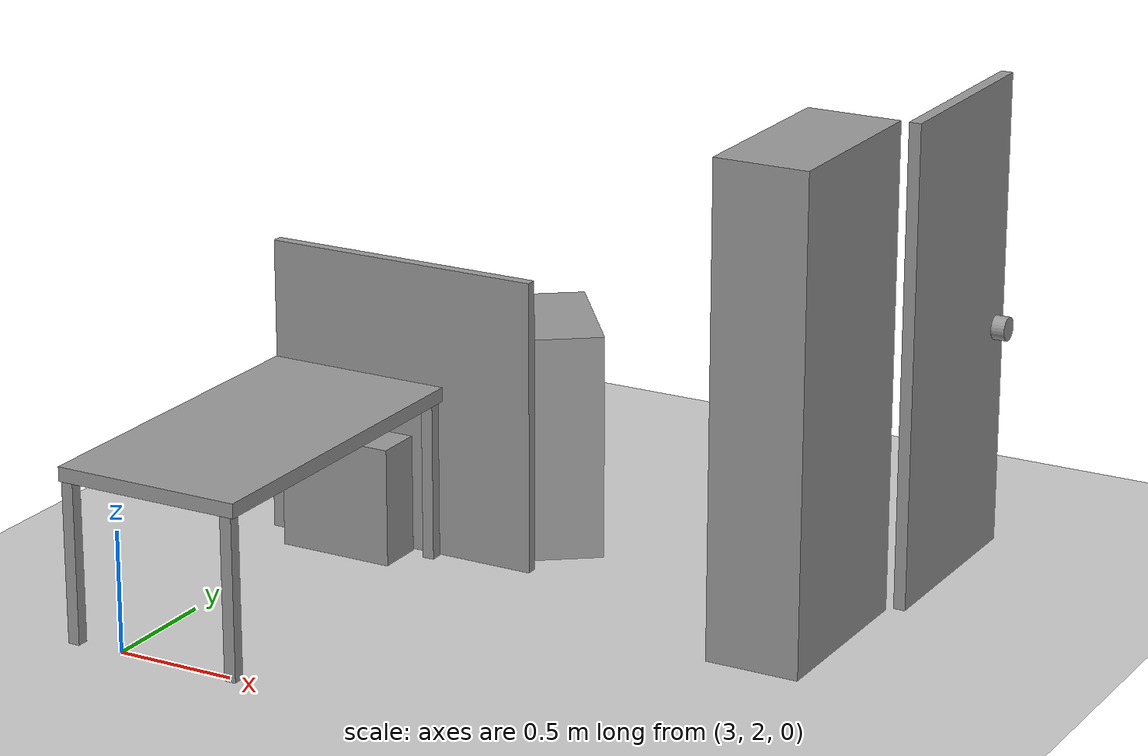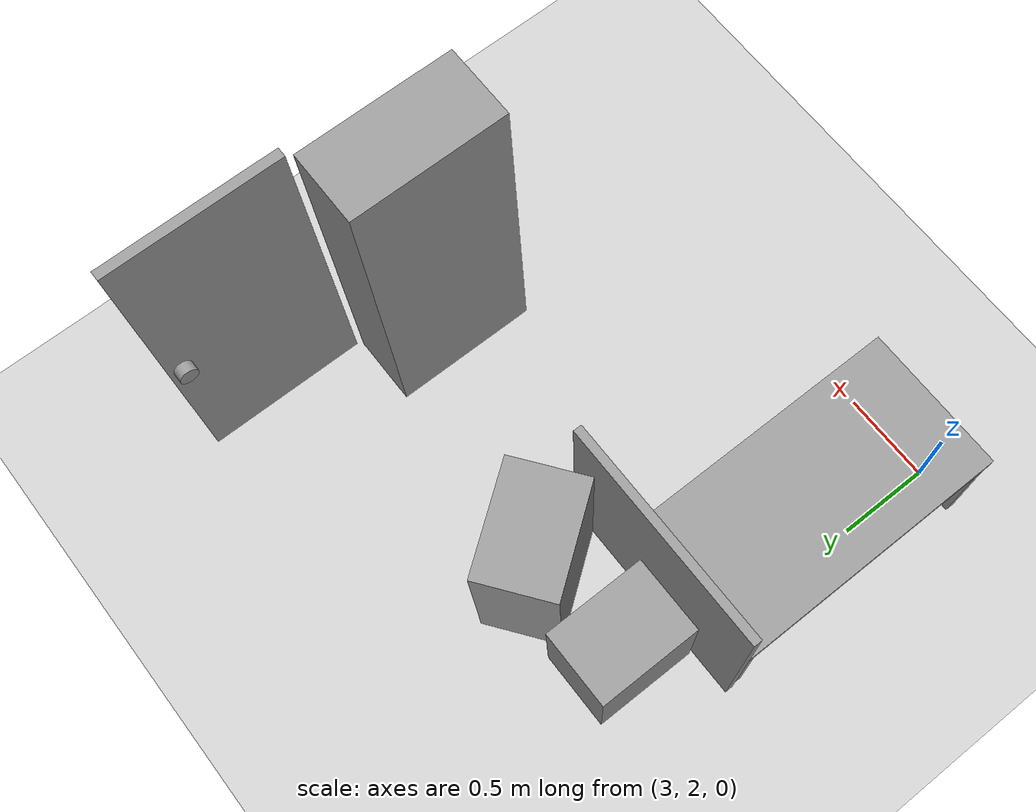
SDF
<sdf version="1.6">
 <world name="default">
  <model name="ground_plane">
   <static>1</static>
   <link name="link">
    <collision name="collision">
     <geometry><plane><normal>0 0 1</normal><size>100 100</size></plane></geometry>
     <surface><friction><ode><mu>100</mu><mu2>50</mu2></ode></friction></surface>
    </collision>
    <visual name="visual">
     <cast_shadows>0</cast_shadows>
     <geometry><plane><normal>0 0 1</normal><size>100 100</size></plane></geometry>
     <material>
      <script><uri>file://media/materials/scripts/gazebo.material</uri><name>Gazebo/Grey</name></script>
     </material>
    </visual>
   </link>
  </model>
  <model name="L8401_cabinet_1">
   <link name="link">
    <inertial>
     <mass>1</mass>
     <inertia>
      <ixx>0.166667</ixx>
      <ixy>0</ixy>
      <ixz>0</ixz>
      <iyy>0.166667</iyy>
      <iyz>0</iyz>
      <izz>0.166667</izz>
     </inertia>
    </inertial>
    <visual name="visual">
     <geometry><box><size>0.39 0.8 2</size></box></geometry>
     <material>
      <script><name>Gazebo/Grey</name><uri>file://media/materials/scripts/gazebo.material</uri></script>
      <ambient>0.3 0.3 0.3 1</ambient>
      <diffuse>0.7 0.7 0.7 1</diffuse>
      <specular>0.01 0.01 0.01 1</specular>
      <emissive>0 0 0 1</emissive>
      <shader type="vertex"><normal_map>__default__</normal_map></shader>
     </material>
    </visual>
    <collision name="collision">
     <geometry><box><size>0.39 0.8 2</size></box></geometry>
     <surface>
      <friction>
       <ode><mu>1</mu><mu2>1</mu2><fdir1>0 0 0</fdir1><slip1>0</slip1><slip2>0</slip2></ode>
       <torsional>
        <coefficient>1</coefficient>
        <patch_radius>0</patch_radius>
        <surface_radius>0</surface_radius>
        <use_patch_radius>1</use_patch_radius>
        <ode><slip>0</slip></ode>
       </torsional>
      </friction>
      <bounce><restitution_coefficient>0</restitution_coefficient><threshold>1e+06</threshold></bounce>
      <contact>
       <collide_without_contact>0</collide_without_contact>
       <collide_without_contact_bitmask>1</collide_without_contact_bitmask>
       <collide_bitmask>1</collide_bitmask>
       <ode>
        <soft_cfm>0</soft_cfm>
        <soft_erp>0.2</soft_erp>
        <kp>1e+13</kp>
        <kd>1</kd>
        <max_vel>0.01</max_vel>
        <min_depth>0</min_depth>
       </ode>
       <bullet>
        <split_impulse>1</split_impulse>
        <split_impulse_penetration_threshold>-0.01</split_impulse_penetration_threshold>
        <soft_cfm>0</soft_cfm>
        <soft_erp>0.2</soft_erp>
        <kp>1e+13</kp>
        <kd>1</kd>
       </bullet>
      </contact>
     </surface>
    </collision>
   </link>
   <static>1</static>
   <pose>5.18748 3.43007 0.999999 -1e-06 1e-06 3.8e-05</pose>
  </model>
  <model name="L8401_desk_clone">
   <link name="link_0">
    <pose>0.358907 -0.716347 -0.07 0 -0 3.14159</pose>
    <inertial>
     <mass>0.00540124</mass>
     <inertia>
      <ixx>0.00024509</ixx>
      <ixy>0</ixy>
      <ixz>0</ixz>
      <iyy>0.00024438</iyy>
      <iyz>0</iyz>
      <izz>6.68e-06</izz>
     </inertia>
    </inertial>
    <visual name="visual">
     <geometry><box><size>0.05 0.05 0.7</size></box></geometry>
     <material>
      <lighting>1</lighting>
      <script><uri>file://media/materials/scripts/gazebo.material</uri><name>Gazebo/Grey</name></script>
      <ambient>0.3 0.3 0.3 1</ambient>
      <diffuse>0.7 0.7 0.7 1</diffuse>
      <specular>0.01 0.01 0.01 1</specular>
      <emissive>0 0 0 1</emissive>
      <shader type="vertex"><normal_map>__default__</normal_map></shader>
     </material>
    </visual>
    <collision name="collision">
     <geometry><box><size>0.05 0.05 0.7</size></box></geometry>
     <surface>
      <friction>
       <ode><mu>1</mu><mu2>1</mu2><fdir1>0 0 0</fdir1><slip1>0</slip1><slip2>0</slip2></ode>
       <torsional>
        <coefficient>1</coefficient>
        <patch_radius>0</patch_radius>
        <surface_radius>0</surface_radius>
        <use_patch_radius>1</use_patch_radius>
        <ode><slip>0</slip></ode>
       </torsional>
      </friction>
      <bounce><restitution_coefficient>0</restitution_coefficient><threshold>1e+06</threshold></bounce>
      <contact>
       <collide_without_contact>0</collide_without_contact>
       <collide_without_contact_bitmask>1</collide_without_contact_bitmask>
       <collide_bitmask>1</collide_bitmask>
       <ode>
        <soft_cfm>0</soft_cfm>
        <soft_erp>0.2</soft_erp>
        <kp>1e+13</kp>
        <kd>1</kd>
        <max_vel>0.01</max_vel>
        <min_depth>0</min_depth>
       </ode>
       <bullet>
        <split_impulse>1</split_impulse>
        <split_impulse_penetration_threshold>-0.01</split_impulse_penetration_threshold>
        <soft_cfm>0</soft_cfm>
        <soft_erp>0.2</soft_erp>
        <kp>1e+13</kp>
        <kd>1</kd>
       </bullet>
      </contact>
     </surface>
    </collision>
   </link>
   <link name="link_0_clone">
    <pose>-0.368381 -0.716242 -0.07 0 -0 3.14159</pose>
    <inertial>
     <mass>0.00540124</mass>
     <inertia>
      <ixx>0.00024509</ixx>
      <ixy>0</ixy>
      <ixz>0</ixz>
      <iyy>0.00024438</iyy>
      <iyz>0</iyz>
      <izz>6.68e-06</izz>
     </inertia>
    </inertial>
    <visual name="visual">
     <geometry><box><size>0.05 0.05 0.7</size></box></geometry>
     <material>
      <lighting>1</lighting>
      <script><uri>file://media/materials/scripts/gazebo.material</uri><name>Gazebo/Grey</name></script>
      <ambient>0.3 0.3 0.3 1</ambient>
      <diffuse>0.7 0.7 0.7 1</diffuse>
      <specular>0.01 0.01 0.01 1</specular>
      <emissive>0 0 0 1</emissive>
      <shader type="vertex"><normal_map>__default__</normal_map></shader>
     </material>
    </visual>
    <collision name="collision">
     <geometry><box><size>0.05 0.05 0.7</size></box></geometry>
     <surface>
      <friction>
       <ode><mu>1</mu><mu2>1</mu2><fdir1>0 0 0</fdir1><slip1>0</slip1><slip2>0</slip2></ode>
       <torsional>
        <coefficient>1</coefficient>
        <patch_radius>0</patch_radius>
        <surface_radius>0</surface_radius>
        <use_patch_radius>1</use_patch_radius>
        <ode><slip>0</slip></ode>
       </torsional>
      </friction>
      <bounce><restitution_coefficient>0</restitution_coefficient><threshold>1e+06</threshold></bounce>
      <contact>
       <collide_without_contact>0</collide_without_contact>
       <collide_without_contact_bitmask>1</collide_without_contact_bitmask>
       <collide_bitmask>1</collide_bitmask>
       <ode>
        <soft_cfm>0</soft_cfm>
        <soft_erp>0.2</soft_erp>
        <kp>1e+13</kp>
        <kd>1</kd>
        <max_vel>0.01</max_vel>
        <min_depth>0</min_depth>
       </ode>
       <bullet>
        <split_impulse>1</split_impulse>
        <split_impulse_penetration_threshold>-0.01</split_impulse_penetration_threshold>
        <soft_cfm>0</soft_cfm>
        <soft_erp>0.2</soft_erp>
        <kp>1e+13</kp>
        <kd>1</kd>
       </bullet>
      </contact>
     </surface>
    </collision>
   </link>
   <link name="link_0_clone_0">
    <pose>-0.368174 0.719141 -0.07 0 -0 3.14159</pose>
    <inertial>
     <mass>0.00540124</mass>
     <inertia>
      <ixx>0.00024509</ixx>
      <ixy>0</ixy>
      <ixz>0</ixz>
      <iyy>0.00024438</iyy>
      <iyz>0</iyz>
      <izz>6.68e-06</izz>
     </inertia>
    </inertial>
    <visual name="visual">
     <geometry><box><size>0.05 0.05 0.7</size></box></geometry>
     <material>
      <lighting>1</lighting>
      <script><uri>file://media/materials/scripts/gazebo.material</uri><name>Gazebo/Grey</name></script>
      <ambient>0.3 0.3 0.3 1</ambient>
      <diffuse>0.7 0.7 0.7 1</diffuse>
      <specular>0.01 0.01 0.01 1</specular>
      <emissive>0 0 0 1</emissive>
      <shader type="vertex"><normal_map>__default__</normal_map></shader>
     </material>
    </visual>
    <collision name="collision">
     <geometry><box><size>0.05 0.05 0.7</size></box></geometry>
     <surface>
      <friction>
       <ode><mu>1</mu><mu2>1</mu2><fdir1>0 0 0</fdir1><slip1>0</slip1><slip2>0</slip2></ode>
       <torsional>
        <coefficient>1</coefficient>
        <patch_radius>0</patch_radius>
        <surface_radius>0</surface_radius>
        <use_patch_radius>1</use_patch_radius>
        <ode><slip>0</slip></ode>
       </torsional>
      </friction>
      <bounce><restitution_coefficient>0</restitution_coefficient><threshold>1e+06</threshold></bounce>
      <contact>
       <collide_without_contact>0</collide_without_contact>
       <collide_without_contact_bitmask>1</collide_without_contact_bitmask>
       <collide_bitmask>1</collide_bitmask>
       <ode>
        <soft_cfm>0</soft_cfm>
        <soft_erp>0.2</soft_erp>
        <kp>1e+13</kp>
        <kd>1</kd>
        <max_vel>0.01</max_vel>
        <min_depth>0</min_depth>
       </ode>
       <bullet>
        <split_impulse>1</split_impulse>
        <split_impulse_penetration_threshold>-0.01</split_impulse_penetration_threshold>
        <soft_cfm>0</soft_cfm>
        <soft_erp>0.2</soft_erp>
        <kp>1e+13</kp>
        <kd>1</kd>
       </bullet>
      </contact>
     </surface>
    </collision>
   </link>
   <link name="link_0_clone_1">
    <pose>0.359113 0.719037 -0.07 0 -0 3.14159</pose>
    <inertial>
     <mass>0.00540124</mass>
     <inertia>
      <ixx>0.00024509</ixx>
      <ixy>0</ixy>
      <ixz>0</ixz>
      <iyy>0.00024438</iyy>
      <iyz>0</iyz>
      <izz>6.68e-06</izz>
     </inertia>
    </inertial>
    <visual name="visual">
     <geometry><box><size>0.05 0.05 0.7</size></box></geometry>
     <material>
      <lighting>1</lighting>
      <script><uri>file://media/materials/scripts/gazebo.material</uri><name>Gazebo/Grey</name></script>
      <ambient>0.3 0.3 0.3 1</ambient>
      <diffuse>0.7 0.7 0.7 1</diffuse>
      <specular>0.01 0.01 0.01 1</specular>
      <emissive>0 0 0 1</emissive>
      <shader type="vertex"><normal_map>__default__</normal_map></shader>
     </material>
    </visual>
    <collision name="collision">
     <geometry><box><size>0.05 0.05 0.7</size></box></geometry>
     <surface>
      <friction>
       <ode><mu>1</mu><mu2>1</mu2><fdir1>0 0 0</fdir1><slip1>0</slip1><slip2>0</slip2></ode>
       <torsional>
        <coefficient>1</coefficient>
        <patch_radius>0</patch_radius>
        <surface_radius>0</surface_radius>
        <use_patch_radius>1</use_patch_radius>
        <ode><slip>0</slip></ode>
       </torsional>
      </friction>
      <bounce><restitution_coefficient>0</restitution_coefficient><threshold>1e+06</threshold></bounce>
      <contact>
       <collide_without_contact>0</collide_without_contact>
       <collide_without_contact_bitmask>1</collide_without_contact_bitmask>
       <collide_bitmask>1</collide_bitmask>
       <ode>
        <soft_cfm>0</soft_cfm>
        <soft_erp>0.2</soft_erp>
        <kp>1e+13</kp>
        <kd>1</kd>
        <max_vel>0.01</max_vel>
        <min_depth>0</min_depth>
       </ode>
       <bullet>
        <split_impulse>1</split_impulse>
        <split_impulse_penetration_threshold>-0.01</split_impulse_penetration_threshold>
        <soft_cfm>0</soft_cfm>
        <soft_erp>0.2</soft_erp>
        <kp>1e+13</kp>
        <kd>1</kd>
       </bullet>
      </contact>
     </surface>
    </collision>
   </link>
   <link name="link_1">
    <pose>-6e-05 0.001672 0.28 0 -0 0</pose>
    <inertial>
     <mass>0.0467165</mass>
     <inertia>
      <ixx>0.00864379</ixx>
      <ixy>0</ixy>
      <ixz>0</ixz>
      <iyy>0.00285842</iyy>
      <iyz>0</iyz>
      <izz>0.0114918</izz>
     </inertia>
    </inertial>
    <visual name="visual">
     <geometry><box><size>0.8 1.5 0.06</size></box></geometry>
     <material>
      <lighting>1</lighting>
      <script><uri>file://media/materials/scripts/gazebo.material</uri><name>Gazebo/Grey</name></script>
      <ambient>0.3 0.3 0.3 1</ambient>
      <diffuse>0.7 0.7 0.7 1</diffuse>
      <specular>0.01 0.01 0.01 1</specular>
      <emissive>0 0 0 1</emissive>
      <shader type="vertex"><normal_map>__default__</normal_map></shader>
     </material>
    </visual>
    <collision name="collision">
     <geometry><box><size>0.8 1.5 0.06</size></box></geometry>
     <surface>
      <friction>
       <ode><mu>1</mu><mu2>1</mu2><fdir1>0 0 0</fdir1><slip1>0</slip1><slip2>0</slip2></ode>
       <torsional>
        <coefficient>1</coefficient>
        <patch_radius>0</patch_radius>
        <surface_radius>0</surface_radius>
        <use_patch_radius>1</use_patch_radius>
        <ode><slip>0</slip></ode>
       </torsional>
      </friction>
      <bounce><restitution_coefficient>0</restitution_coefficient><threshold>1e+06</threshold></bounce>
      <contact>
       <collide_without_contact>0</collide_without_contact>
       <collide_without_contact_bitmask>1</collide_without_contact_bitmask>
       <collide_bitmask>1</collide_bitmask>
       <ode>
        <soft_cfm>0</soft_cfm>
        <soft_erp>0.2</soft_erp>
        <kp>1e+13</kp>
        <kd>1</kd>
        <max_vel>0.01</max_vel>
        <min_depth>0</min_depth>
       </ode>
       <bullet>
        <split_impulse>1</split_impulse>
        <split_impulse_penetration_threshold>-0.01</split_impulse_penetration_threshold>
        <soft_cfm>0</soft_cfm>
        <soft_erp>0.2</soft_erp>
        <kp>1e+13</kp>
        <kd>1</kd>
       </bullet>
      </contact>
     </surface>
    </collision>
   </link>
   <joint name="link_1_JOINT_0" type="fixed">
    <parent>link_1</parent>
    <child>link_0</child>
    <pose>0 0 0 -0.01 -0.02 -0.01</pose>
    <physics>
     <ode><limit><cfm>0</cfm><erp>0.2</erp></limit><suspension><cfm>0</cfm><erp>0.2</erp></suspension></ode>
    </physics>
   </joint>
   <joint name="link_1_JOINT_1" type="fixed">
    <parent>link_1</parent>
    <child>link_0_clone</child>
    <physics>
     <ode><limit><cfm>0</cfm><erp>0.2</erp></limit><suspension><cfm>0</cfm><erp>0.2</erp></suspension></ode>
    </physics>
   </joint>
   <joint name="link_1_JOINT_2" type="fixed">
    <parent>link_1</parent>
    <child>link_0_clone_1</child>
    <physics>
     <ode><limit><cfm>0</cfm><erp>0.2</erp></limit><suspension><cfm>0</cfm><erp>0.2</erp></suspension></ode>
    </physics>
   </joint>
   <joint name="link_1_JOINT_3" type="fixed">
    <parent>link_1</parent>
    <child>link_0_clone_0</child>
    <physics>
     <ode><limit><cfm>0</cfm><erp>0.2</erp></limit><suspension><cfm>0</cfm><erp>0.2</erp></suspension></ode>
    </physics>
   </joint>
   <static>1</static>
   <pose>3.16329 2.71354 0.420005 6e-06 2e-06 -0.00312</pose>
  </model>
  <model name="L8401_panel_A_0_clone_1">
   <link name="link_0">
    <inertial>
     <mass>1</mass>
     <inertia>
      <ixx>0.166667</ixx>
      <ixy>0</ixy>
      <ixz>0</ixz>
      <iyy>0.166667</iyy>
      <iyz>0</iyz>
      <izz>0.166667</izz>
     </inertia>
    </inertial>
    <visual name="visual">
     <geometry><box><size>1.2 0.045 1.23</size></box></geometry>
     <material>
      <lighting>1</lighting>
      <script><uri>file://media/materials/scripts/gazebo.material</uri><name>Gazebo/Grey</name></script>
      <ambient>0.3 0.3 0.3 1</ambient>
      <diffuse>0.7 0.7 0.7 1</diffuse>
      <specular>0.01 0.01 0.01 1</specular>
      <emissive>0 0 0 1</emissive>
      <shader type="vertex"><normal_map>__default__</normal_map></shader>
     </material>
    </visual>
    <collision name="collision">
     <geometry><box><size>1.2 0.045 1.23</size></box></geometry>
     <surface>
      <friction>
       <ode><mu>1</mu><mu2>1</mu2><fdir1>0 0 0</fdir1><slip1>0</slip1><slip2>0</slip2></ode>
       <torsional>
        <coefficient>1</coefficient>
        <patch_radius>0</patch_radius>
        <surface_radius>0</surface_radius>
        <use_patch_radius>1</use_patch_radius>
        <ode><slip>0</slip></ode>
       </torsional>
      </friction>
      <bounce><restitution_coefficient>0</restitution_coefficient><threshold>1e+06</threshold></bounce>
      <contact>
       <collide_without_contact>0</collide_without_contact>
       <collide_without_contact_bitmask>1</collide_without_contact_bitmask>
       <collide_bitmask>1</collide_bitmask>
       <ode>
        <soft_cfm>0</soft_cfm>
        <soft_erp>0.2</soft_erp>
        <kp>1e+13</kp>
        <kd>1</kd>
        <max_vel>0.01</max_vel>
        <min_depth>0</min_depth>
       </ode>
       <bullet>
        <split_impulse>1</split_impulse>
        <split_impulse_penetration_threshold>-0.01</split_impulse_penetration_threshold>
        <soft_cfm>0</soft_cfm>
        <soft_erp>0.2</soft_erp>
        <kp>1e+13</kp>
        <kd>1</kd>
       </bullet>
      </contact>
     </surface>
    </collision>
   </link>
   <static>1</static>
   <pose>3.36411 3.49268 0.615002 5e-06 3e-06 -2.3e-05</pose>
  </model>
  <model name="L8401_computer_clone">
   <link name="link">
    <inertial>
     <mass>1</mass>
     <inertia>
      <ixx>0.166667</ixx>
      <ixy>0</ixy>
      <ixz>0</ixz>
      <iyy>0.166667</iyy>
      <iyz>0</iyz>
      <izz>0.166667</izz>
     </inertia>
    </inertial>
    <visual name="visual">
     <geometry><box><size>0.5 0.2 0.5</size></box></geometry>
     <material>
      <script><name>Gazebo/Grey</name><uri>file://media/materials/scripts/gazebo.material</uri></script>
      <ambient>0.3 0.3 0.3 1</ambient>
      <diffuse>0.7 0.7 0.7 1</diffuse>
      <specular>0.01 0.01 0.01 1</specular>
      <emissive>0 0 0 1</emissive>
      <shader type="vertex"><normal_map>__default__</normal_map></shader>
     </material>
    </visual>
    <collision name="collision">
     <geometry><box><size>0.5 0.2 0.5</size></box></geometry>
     <surface>
      <friction>
       <ode><mu>1</mu><mu2>1</mu2><fdir1>0 0 0</fdir1><slip1>0</slip1><slip2>0</slip2></ode>
       <torsional>
        <coefficient>1</coefficient>
        <patch_radius>0</patch_radius>
        <surface_radius>0</surface_radius>
        <use_patch_radius>1</use_patch_radius>
        <ode><slip>0</slip></ode>
       </torsional>
      </friction>
      <bounce><restitution_coefficient>0</restitution_coefficient><threshold>1e+06</threshold></bounce>
      <contact>
       <collide_without_contact>0</collide_without_contact>
       <collide_without_contact_bitmask>1</collide_without_contact_bitmask>
       <collide_bitmask>1</collide_bitmask>
       <ode>
        <soft_cfm>0</soft_cfm>
        <soft_erp>0.2</soft_erp>
        <kp>1e+13</kp>
        <kd>1</kd>
        <max_vel>0.01</max_vel>
        <min_depth>0</min_depth>
       </ode>
       <bullet>
        <split_impulse>1</split_impulse>
        <split_impulse_penetration_threshold>-0.01</split_impulse_penetration_threshold>
        <soft_cfm>0</soft_cfm>
        <soft_erp>0.2</soft_erp>
        <kp>1e+13</kp>
        <kd>1</kd>
       </bullet>
      </contact>
     </surface>
    </collision>
   </link>
   <static>1</static>
   <pose>3.17489 3.35275 0.25 4e-06 -0 -3.9e-05</pose>
  </model>
  <model name="L8401_drawer_A_clone">
   <link name="link">
    <inertial>
     <mass>1</mass>
     <inertia>
      <ixx>0.166667</ixx>
      <ixy>0</ixy>
      <ixz>0</ixz>
      <iyy>0.166667</iyy>
      <iyz>0</iyz>
      <izz>0.166667</izz>
     </inertia>
    </inertial>
    <visual name="visual">
     <geometry><box><size>0.56 0.42 0.61</size></box></geometry>
     <material>
      <script><name>Gazebo/Grey</name><uri>file://media/materials/scripts/gazebo.material</uri></script>
      <ambient>0.3 0.3 0.3 1</ambient>
      <diffuse>0.7 0.7 0.7 1</diffuse>
      <specular>0.01 0.01 0.01 1</specular>
      <emissive>0 0 0 1</emissive>
      <shader type="vertex"><normal_map>__default__</normal_map></shader>
     </material>
    </visual>
    <collision name="collision">
     <geometry><box><size>0.56 0.42 0.61</size></box></geometry>
     <surface>
      <friction>
       <ode><mu>1</mu><mu2>1</mu2><fdir1>0 0 0</fdir1><slip1>0</slip1><slip2>0</slip2></ode>
       <torsional>
        <coefficient>1</coefficient>
        <patch_radius>0</patch_radius>
        <surface_radius>0</surface_radius>
        <use_patch_radius>1</use_patch_radius>
        <ode><slip>0</slip></ode>
       </torsional>
      </friction>
      <bounce><restitution_coefficient>0</restitution_coefficient><threshold>1e+06</threshold></bounce>
      <contact>
       <collide_without_contact>0</collide_without_contact>
       <collide_without_contact_bitmask>1</collide_without_contact_bitmask>
       <collide_bitmask>1</collide_bitmask>
       <ode>
        <soft_cfm>0</soft_cfm>
        <soft_erp>0.2</soft_erp>
        <kp>1e+13</kp>
        <kd>1</kd>
        <max_vel>0.01</max_vel>
        <min_depth>0</min_depth>
       </ode>
       <bullet>
        <split_impulse>1</split_impulse>
        <split_impulse_penetration_threshold>-0.01</split_impulse_penetration_threshold>
        <soft_cfm>0</soft_cfm>
        <soft_erp>0.2</soft_erp>
        <kp>1e+13</kp>
        <kd>1</kd>
       </bullet>
      </contact>
     </surface>
    </collision>
   </link>
   <static>1</static>
   <pose>3.23232 3.81247 0.305 0 -0 1.57</pose>
  </model>
  <model name="L8401_air_purifier">
   <link name="link">
    <inertial>
     <mass>1</mass>
     <inertia>
      <ixx>0.166667</ixx>
      <ixy>0</ixy>
      <ixz>0</ixz>
      <iyy>0.166667</iyy>
      <iyz>0</iyz>
      <izz>0.166667</izz>
     </inertia>
    </inertial>
    <visual name="visual">
     <geometry><box><size>0.42 0.6 0.95</size></box></geometry>
     <material>
      <script><name>Gazebo/Grey</name><uri>file://media/materials/scripts/gazebo.material</uri></script>
      <ambient>0.3 0.3 0.3 1</ambient>
      <diffuse>0.7 0.7 0.7 1</diffuse>
      <specular>0.01 0.01 0.01 1</specular>
      <emissive>0 0 0 1</emissive>
      <shader type="vertex"><normal_map>__default__</normal_map></shader>
     </material>
    </visual>
    <collision name="collision">
     <geometry><box><size>0.42 0.6 0.95</size></box></geometry>
     <surface>
      <friction>
       <ode><mu>1</mu><mu2>1</mu2><fdir1>0 0 0</fdir1><slip1>0</slip1><slip2>0</slip2></ode>
       <torsional>
        <coefficient>1</coefficient>
        <patch_radius>0</patch_radius>
        <surface_radius>0</surface_radius>
        <use_patch_radius>1</use_patch_radius>
        <ode><slip>0</slip></ode>
       </torsional>
      </friction>
      <bounce><restitution_coefficient>0</restitution_coefficient><threshold>1e+06</threshold></bounce>
      <contact>
       <collide_without_contact>0</collide_without_contact>
       <collide_without_contact_bitmask>1</collide_without_contact_bitmask>
       <collide_bitmask>1</collide_bitmask>
       <ode>
        <soft_cfm>0</soft_cfm>
        <soft_erp>0.2</soft_erp>
        <kp>1e+13</kp>
        <kd>1</kd>
        <max_vel>0.01</max_vel>
        <min_depth>0</min_depth>
       </ode>
       <bullet>
        <split_impulse>1</split_impulse>
        <split_impulse_penetration_threshold>-0.01</split_impulse_penetration_threshold>
        <soft_cfm>0</soft_cfm>
        <soft_erp>0.2</soft_erp>
        <kp>1e+13</kp>
        <kd>1</kd>
       </bullet>
      </contact>
     </surface>
    </collision>
   </link>
   <static>1</static>
   <pose>3.79708 3.88428 0.475 0 -0 0.640719</pose>
  </model>
  <model name="L8401_door_B_0">
   <link name="link">
    <pose>0 0 0.5 0 -0 0</pose>
    <inertial>
     <mass>0.112344</mass>
     <inertia>
      <ixx>0.0416027</ixx>
      <ixy>0</ixy>
      <ixz>0</ixz>
      <iyy>0.0357471</iyy>
      <iyz>0</iyz>
      <izz>0.00595378</izz>
     </inertia>
    </inertial>
    <visual name="visual">
     <geometry><box><size>0.05 0.89 1.99</size></box></geometry>
     <material>
      <script><name>Gazebo/Grey</name><uri>file://media/materials/scripts/gazebo.material</uri></script>
      <ambient>0.3 0.3 0.3 1</ambient>
      <diffuse>0.7 0.7 0.7 1</diffuse>
      <specular>0.01 0.01 0.01 1</specular>
      <emissive>0 0 0 1</emissive>
      <shader type="vertex"><normal_map>__default__</normal_map></shader>
     </material>
    </visual>
    <collision name="collision">
     <geometry><box><size>0.05 0.89 1.99</size></box></geometry>
     <surface>
      <friction>
       <ode><mu>1</mu><mu2>1</mu2><fdir1>0 0 0</fdir1><slip1>0</slip1><slip2>0</slip2></ode>
       <torsional>
        <coefficient>1</coefficient>
        <patch_radius>0</patch_radius>
        <surface_radius>0</surface_radius>
        <use_patch_radius>1</use_patch_radius>
        <ode><slip>0</slip></ode>
       </torsional>
      </friction>
      <bounce><restitution_coefficient>0</restitution_coefficient><threshold>1e+06</threshold></bounce>
      <contact>
       <collide_without_contact>0</collide_without_contact>
       <collide_without_contact_bitmask>1</collide_without_contact_bitmask>
       <collide_bitmask>1</collide_bitmask>
       <ode>
        <soft_cfm>0</soft_cfm>
        <soft_erp>0.2</soft_erp>
        <kp>1e+13</kp>
        <kd>1</kd>
        <max_vel>0.01</max_vel>
        <min_depth>0</min_depth>
       </ode>
       <bullet>
        <split_impulse>1</split_impulse>
        <split_impulse_penetration_threshold>-0.01</split_impulse_penetration_threshold>
        <soft_cfm>0</soft_cfm>
        <soft_erp>0.2</soft_erp>
        <kp>1e+13</kp>
        <kd>1</kd>
       </bullet>
      </contact>
     </surface>
    </collision>
   </link>
   <link name="link_1">
    <pose>0 -0.371217 0.450023 0 1.57 0</pose>
    <inertial>
     <mass>3.29699</mass>
     <inertia><ixx>3.19262</ixx><ixy>0</ixy><ixz>0</ixz><iyy>3.19262</iyy><iyz>0</iyz><izz>0.412124</izz></inertia>
    </inertial>
    <visual name="visual">
     <geometry><cylinder><radius>0.05</radius><length>0.164854</length></cylinder></geometry>
     <material>
      <lighting>1</lighting>
      <script><uri>file://media/materials/scripts/gazebo.material</uri><name>Gazebo/Grey</name></script>
      <ambient>0.3 0.3 0.3 1</ambient>
      <diffuse>0.7 0.7 0.7 1</diffuse>
      <specular>0.01 0.01 0.01 1</specular>
      <emissive>0 0 0 1</emissive>
      <shader type="vertex"><normal_map>__default__</normal_map></shader>
     </material>
    </visual>
    <collision name="collision">
     <geometry><cylinder><radius>0.05</radius><length>0.164854</length></cylinder></geometry>
     <surface>
      <friction>
       <ode><mu>1</mu><mu2>1</mu2><fdir1>0 0 0</fdir1><slip1>0</slip1><slip2>0</slip2></ode>
       <torsional>
        <coefficient>1</coefficient>
        <patch_radius>0</patch_radius>
        <surface_radius>0</surface_radius>
        <use_patch_radius>1</use_patch_radius>
        <ode><slip>0</slip></ode>
       </torsional>
      </friction>
      <bounce><restitution_coefficient>0</restitution_coefficient><threshold>1e+06</threshold></bounce>
      <contact>
       <collide_without_contact>0</collide_without_contact>
       <collide_without_contact_bitmask>1</collide_without_contact_bitmask>
       <collide_bitmask>1</collide_bitmask>
       <ode>
        <soft_cfm>0</soft_cfm>
        <soft_erp>0.2</soft_erp>
        <kp>1e+13</kp>
        <kd>1</kd>
        <max_vel>0.01</max_vel>
        <min_depth>0</min_depth>
       </ode>
       <bullet>
        <split_impulse>1</split_impulse>
        <split_impulse_penetration_threshold>-0.01</split_impulse_penetration_threshold>
        <soft_cfm>0</soft_cfm>
        <soft_erp>0.2</soft_erp>
        <kp>1e+13</kp>
        <kd>1</kd>
       </bullet>
      </contact>
     </surface>
    </collision>
   </link>
   <joint name="link_JOINT_0" type="fixed">
    <parent>link</parent>
    <child>link_1</child>
    <physics>
     <ode><limit><cfm>0</cfm><erp>0.2</erp></limit><suspension><cfm>0</cfm><erp>0.2</erp></suspension></ode>
    </physics>
   </joint>
   <static>1</static>
   <pose>5.4279 4.30247 0.494999 2e-06 2e-06 -3.14158</pose>
  </model>
 </world>
</sdf>
